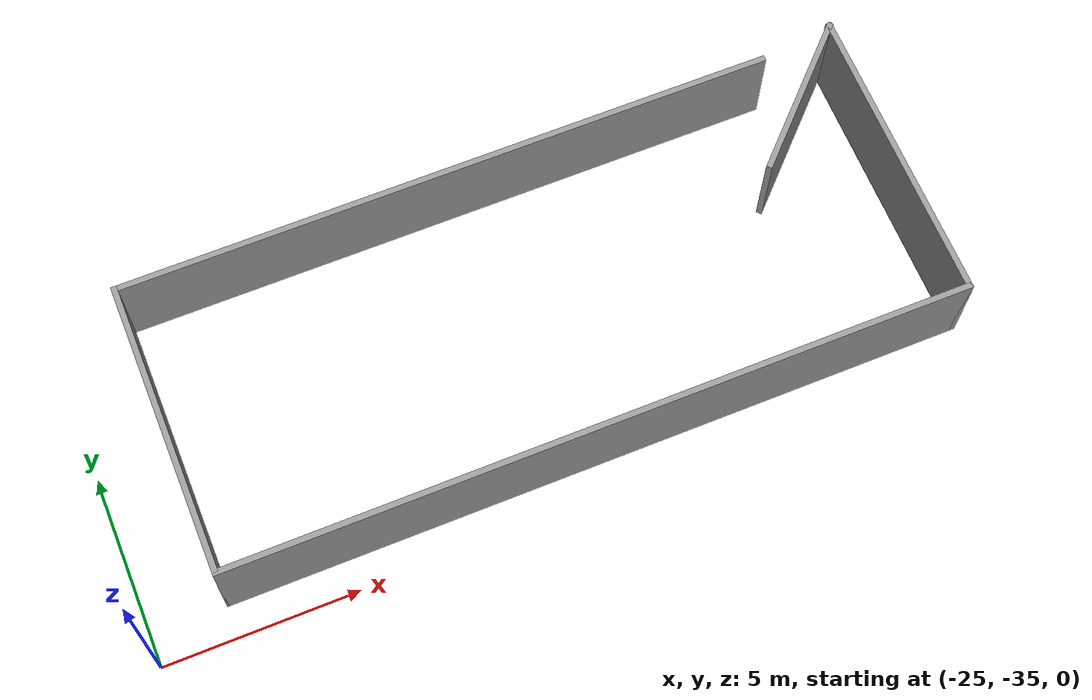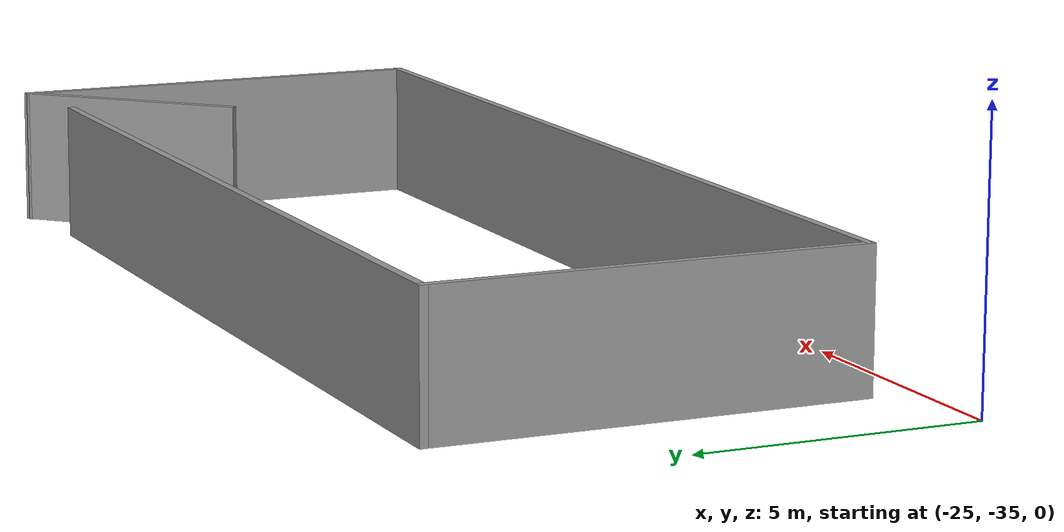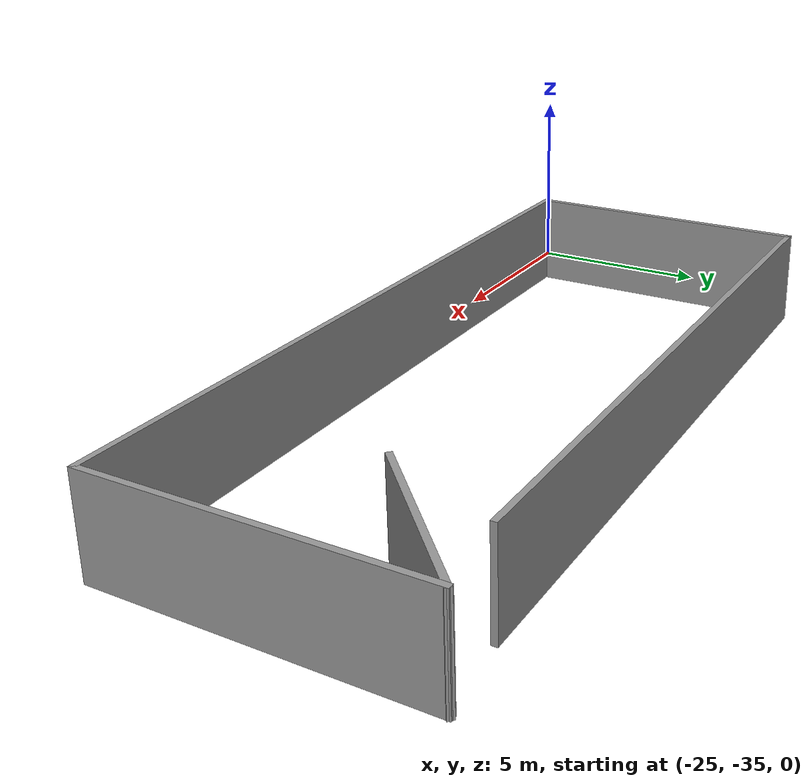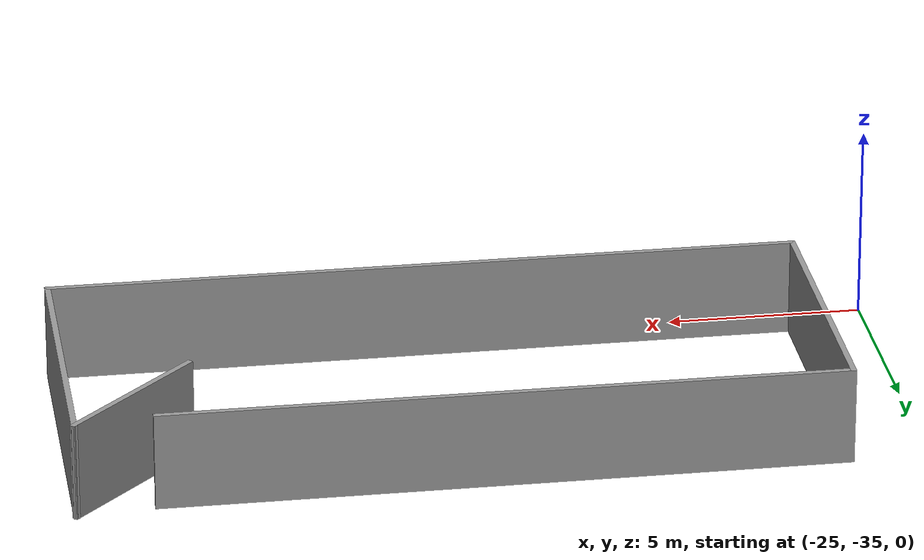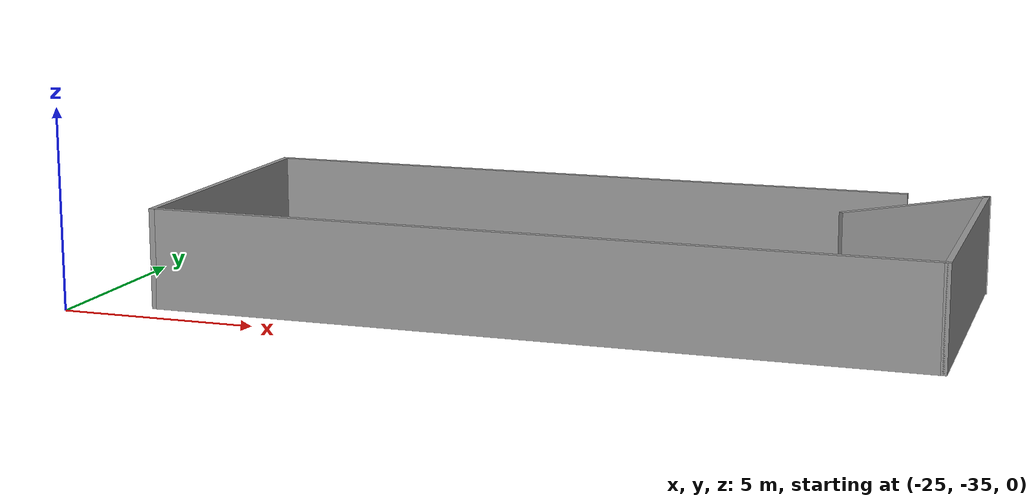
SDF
<?xml version='1.0'?>
<sdf version='1.6'>
  <model name='room4'>
    <pose frame=''>-13.4478 -30.1653 0 0 -0 0</pose>
    <link name='Wall_32'>
      <collision name='Wall_32_Collision'>
        <geometry>
          <box>
            <size>17.25 0.15 2.5</size>
          </box>
        </geometry>
        <pose frame=''>0 0 1.25 0 -0 0</pose>
      </collision>
      <visual name='Wall_32_Visual'>
        <pose frame=''>0 0 1.25 0 -0 0</pose>
        <geometry>
          <box>
            <size>17.25 0.15 2.5</size>
          </box>
        </geometry>
        <material>
          <script>
            <uri>file://media/materials/scripts/gazebo.material</uri>
            <name>Gazebo/Grey</name>
          </script>
          <ambient>1 1 1 1</ambient>
        </material>
        <meta>
          <layer>0</layer>
        </meta>
      </visual>
      <pose frame=''>-1.01553 3.65947 0 0 -0 3.14159</pose>
    </link>
    <link name='Wall_33'>
      <collision name='Wall_33_Collision'>
        <geometry>
          <box>
            <size>7.75 0.15 2.5</size>
          </box>
        </geometry>
        <pose frame=''>0 0 1.25 0 -0 0</pose>
      </collision>
      <visual name='Wall_33_Visual'>
        <pose frame=''>0 0 1.25 0 -0 0</pose>
        <geometry>
          <box>
            <size>7.75 0.15 2.5</size>
          </box>
        </geometry>
        <material>
          <script>
            <uri>file://media/materials/scripts/gazebo.material</uri>
            <name>Gazebo/Grey</name>
          </script>
          <ambient>1 1 1 1</ambient>
        </material>
        <meta>
          <layer>0</layer>
        </meta>
      </visual>
      <pose frame=''>-9.56553 -0.140533 0 0 -0 -1.5708</pose>
    </link>
    <link name='Wall_34'>
      <collision name='Wall_34_Collision'>
        <geometry>
          <box>
            <size>19.25 0.15 2.5</size>
          </box>
        </geometry>
        <pose frame=''>0 0 1.25 0 -0 0</pose>
      </collision>
      <visual name='Wall_34_Visual'>
        <pose frame=''>0 0 1.25 0 -0 0</pose>
        <geometry>
          <box>
            <size>19.25 0.15 2.5</size>
          </box>
        </geometry>
        <material>
          <script>
            <uri>file://media/materials/scripts/gazebo.material</uri>
            <name>Gazebo/Grey</name>
          </script>
          <ambient>1 1 1 1</ambient>
        </material>
        <meta>
          <layer>0</layer>
        </meta>
      </visual>
      <pose frame=''>-0.015533 -3.94053 0 0 -0 0</pose>
    </link>
    <link name='Wall_35'>
      <collision name='Wall_35_Collision'>
        <geometry>
          <box>
            <size>8 0.15 2.5</size>
          </box>
        </geometry>
        <pose frame=''>0 0 1.25 0 -0 0</pose>
      </collision>
      <visual name='Wall_35_Visual'>
        <pose frame=''>0 0 1.25 0 -0 0</pose>
        <geometry>
          <box>
            <size>8 0.15 2.5</size>
          </box>
        </geometry>
        <material>
          <script>
            <uri>file://media/materials/scripts/gazebo.material</uri>
            <name>Gazebo/Grey</name>
          </script>
          <ambient>1 1 1 1</ambient>
        </material>
        <meta>
          <layer>0</layer>
        </meta>
      </visual>
      <pose frame=''>9.53447 -0.015533 0 0 -0 1.5708</pose>
    </link>
    <link name='Wall_36'>
      <collision name='Wall_36_Collision'>
        <geometry>
          <box>
            <size>4.5 0.15 2.5</size>
          </box>
        </geometry>
        <pose frame=''>0 0 1.25 0 -0 0</pose>
      </collision>
      <visual name='Wall_36_Visual'>
        <pose frame=''>0 0 1.25 0 -0 0</pose>
        <geometry>
          <box>
            <size>4.5 0.15 2.5</size>
          </box>
        </geometry>
        <material>
          <script>
            <uri>file://media/materials/scripts/gazebo.material</uri>
            <name>Gazebo/Grey</name>
          </script>
          <ambient>0 0 0 1</ambient>
        </material>
        <meta>
          <layer>0</layer>
        </meta>
      </visual>
      <pose frame=''>7.99651 2.37151 0 0 -0 -2.35619</pose>
    </link>
    <static>1</static>
  </model>
</sdf>
